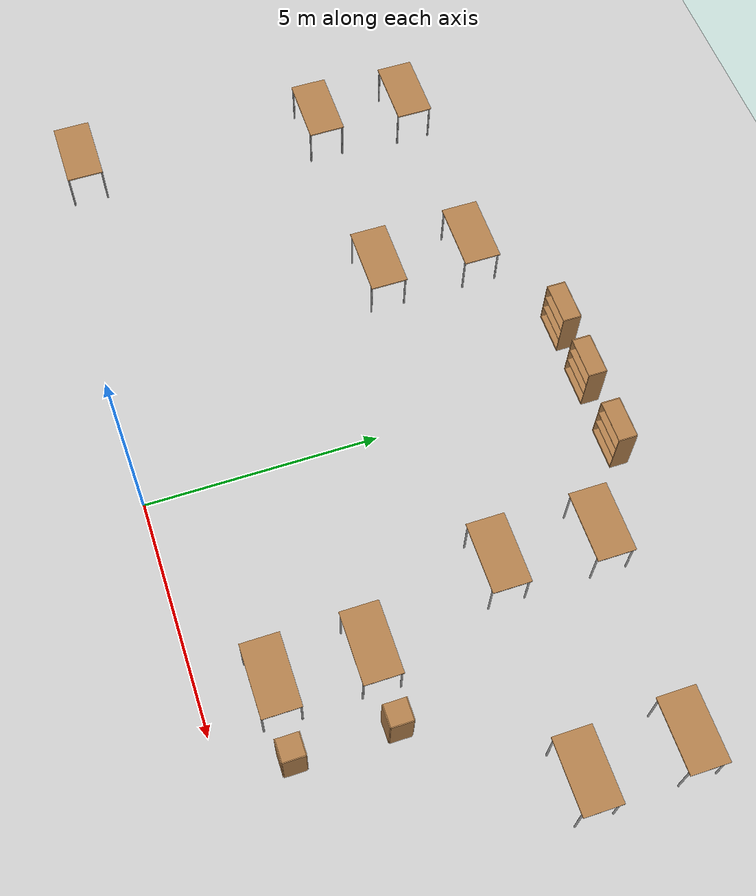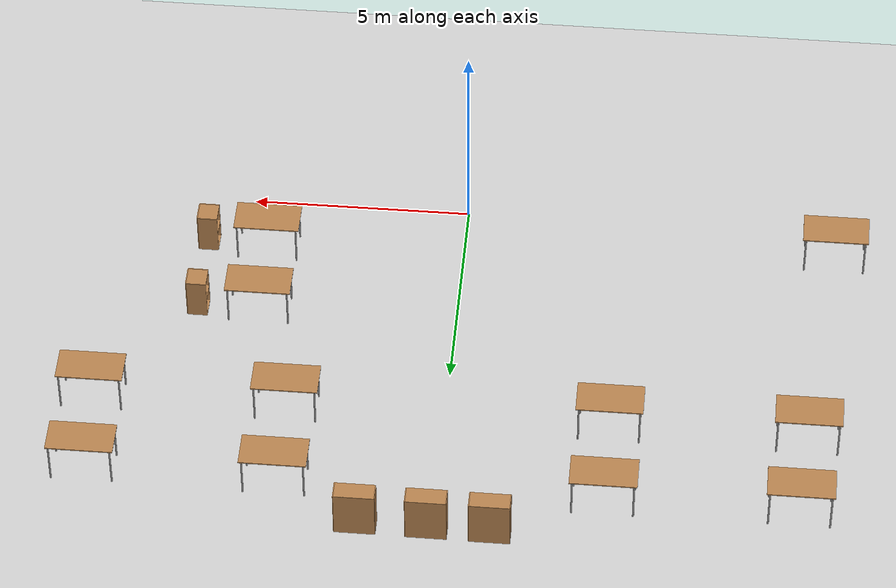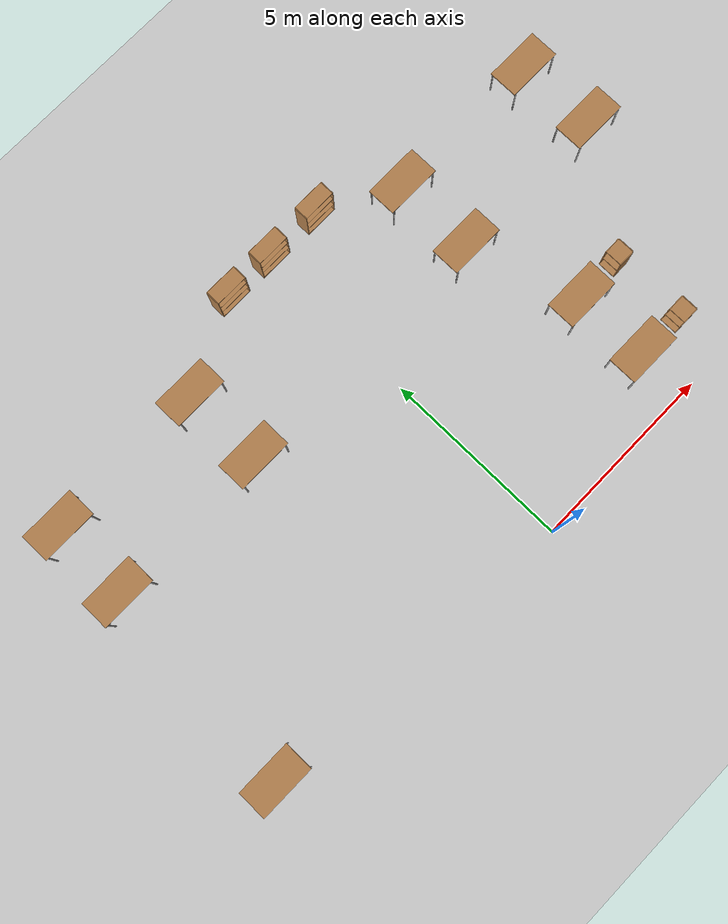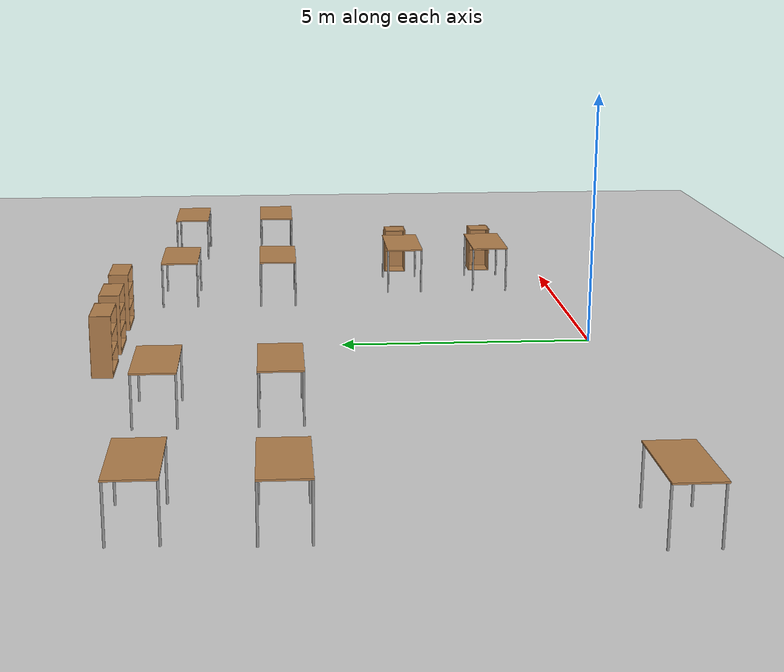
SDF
<sdf version="1.6">
 <world name="default">
  <model name="ground_plane">
   <static>1</static>
   <link name="link">
    <collision name="collision">
     <geometry><plane><normal>0 0 1</normal><size>100 100</size></plane></geometry>
     <surface>
      <contact><collide_bitmask>65535</collide_bitmask></contact>
      <friction><ode><mu>100</mu><mu2>50</mu2></ode></friction>
     </surface>
    </collision>
    <visual name="visual">
     <cast_shadows>0</cast_shadows>
     <geometry><plane><normal>0 0 1</normal><size>100 100</size></plane></geometry>
     <material>
      <script><uri>file://media/materials/scripts/gazebo.material</uri><name>Gazebo/Grey</name></script>
     </material>
    </visual>
   </link>
  </model>
  <model name="table">
   <static>1</static>
   <link name="link">
    <collision name="surface">
     <pose>0 0 1 0 -0 0</pose>
     <geometry><box><size>1.5 0.8 0.03</size></box></geometry>
     <surface><friction><ode><mu>0.6</mu><mu2>0.6</mu2></ode></friction></surface>
    </collision>
    <visual name="visual1">
     <pose>0 0 1 0 -0 0</pose>
     <geometry><box><size>1.5 0.8 0.03</size></box></geometry>
     <material>
      <script><uri>file://media/materials/scripts/gazebo.material</uri><name>Gazebo/Wood</name></script>
     </material>
    </visual>
    <collision name="front_left_leg">
     <pose>0.68 0.38 0.5 0 -0 0</pose>
     <geometry><cylinder><radius>0.02</radius><length>1</length></cylinder></geometry>
    </collision>
    <visual name="front_left_leg">
     <pose>0.68 0.38 0.5 0 -0 0</pose>
     <geometry><cylinder><radius>0.02</radius><length>1</length></cylinder></geometry>
     <material>
      <script><uri>file://media/materials/scripts/gazebo.material</uri><name>Gazebo/Grey</name></script>
     </material>
    </visual>
    <collision name="front_right_leg">
     <pose>0.68 -0.38 0.5 0 -0 0</pose>
     <geometry><cylinder><radius>0.02</radius><length>1</length></cylinder></geometry>
    </collision>
    <visual name="front_right_leg">
     <pose>0.68 -0.38 0.5 0 -0 0</pose>
     <geometry><cylinder><radius>0.02</radius><length>1</length></cylinder></geometry>
     <material>
      <script><uri>file://media/materials/scripts/gazebo.material</uri><name>Gazebo/Grey</name></script>
     </material>
    </visual>
    <collision name="back_right_leg">
     <pose>-0.68 -0.38 0.5 0 -0 0</pose>
     <geometry><cylinder><radius>0.02</radius><length>1</length></cylinder></geometry>
    </collision>
    <visual name="back_right_leg">
     <pose>-0.68 -0.38 0.5 0 -0 0</pose>
     <geometry><cylinder><radius>0.02</radius><length>1</length></cylinder></geometry>
     <material>
      <script><uri>file://media/materials/scripts/gazebo.material</uri><name>Gazebo/Grey</name></script>
     </material>
    </visual>
    <collision name="back_left_leg">
     <pose>-0.68 0.38 0.5 0 -0 0</pose>
     <geometry><cylinder><radius>0.02</radius><length>1</length></cylinder></geometry>
    </collision>
    <visual name="back_left_leg">
     <pose>-0.68 0.38 0.5 0 -0 0</pose>
     <geometry><cylinder><radius>0.02</radius><length>1</length></cylinder></geometry>
     <material>
      <script><uri>file://media/materials/scripts/gazebo.material</uri><name>Gazebo/Grey</name></script>
     </material>
    </visual>
   </link>
   <pose>-8.53709 0.710616 0 0 -0 0</pose>
  </model>
  <model name="table_5">
   <static>1</static>
   <link name="link">
    <collision name="surface">
     <pose>0 0 1 0 -0 0</pose>
     <geometry><box><size>1.5 0.8 0.03</size></box></geometry>
     <surface><friction><ode><mu>0.6</mu><mu2>0.6</mu2></ode></friction></surface>
    </collision>
    <visual name="visual1">
     <pose>0 0 1 0 -0 0</pose>
     <geometry><box><size>1.5 0.8 0.03</size></box></geometry>
     <material>
      <script><uri>file://media/materials/scripts/gazebo.material</uri><name>Gazebo/Wood</name></script>
     </material>
    </visual>
    <collision name="front_left_leg">
     <pose>0.68 0.38 0.5 0 -0 0</pose>
     <geometry><cylinder><radius>0.02</radius><length>1</length></cylinder></geometry>
    </collision>
    <visual name="front_left_leg">
     <pose>0.68 0.38 0.5 0 -0 0</pose>
     <geometry><cylinder><radius>0.02</radius><length>1</length></cylinder></geometry>
     <material>
      <script><uri>file://media/materials/scripts/gazebo.material</uri><name>Gazebo/Grey</name></script>
     </material>
    </visual>
    <collision name="front_right_leg">
     <pose>0.68 -0.38 0.5 0 -0 0</pose>
     <geometry><cylinder><radius>0.02</radius><length>1</length></cylinder></geometry>
    </collision>
    <visual name="front_right_leg">
     <pose>0.68 -0.38 0.5 0 -0 0</pose>
     <geometry><cylinder><radius>0.02</radius><length>1</length></cylinder></geometry>
     <material>
      <script><uri>file://media/materials/scripts/gazebo.material</uri><name>Gazebo/Grey</name></script>
     </material>
    </visual>
    <collision name="back_right_leg">
     <pose>-0.68 -0.38 0.5 0 -0 0</pose>
     <geometry><cylinder><radius>0.02</radius><length>1</length></cylinder></geometry>
    </collision>
    <visual name="back_right_leg">
     <pose>-0.68 -0.38 0.5 0 -0 0</pose>
     <geometry><cylinder><radius>0.02</radius><length>1</length></cylinder></geometry>
     <material>
      <script><uri>file://media/materials/scripts/gazebo.material</uri><name>Gazebo/Grey</name></script>
     </material>
    </visual>
    <collision name="back_left_leg">
     <pose>-0.68 0.38 0.5 0 -0 0</pose>
     <geometry><cylinder><radius>0.02</radius><length>1</length></cylinder></geometry>
    </collision>
    <visual name="back_left_leg">
     <pose>-0.68 0.38 0.5 0 -0 0</pose>
     <geometry><cylinder><radius>0.02</radius><length>1</length></cylinder></geometry>
     <material>
      <script><uri>file://media/materials/scripts/gazebo.material</uri><name>Gazebo/Grey</name></script>
     </material>
    </visual>
   </link>
   <pose>4.50079 3.36839 0 0 -0 0</pose>
  </model>
  <model name="table_6">
   <static>1</static>
   <link name="link">
    <collision name="surface">
     <pose>0 0 1 0 -0 0</pose>
     <geometry><box><size>1.5 0.8 0.03</size></box></geometry>
     <surface><friction><ode><mu>0.6</mu><mu2>0.6</mu2></ode></friction></surface>
    </collision>
    <visual name="visual1">
     <pose>0 0 1 0 -0 0</pose>
     <geometry><box><size>1.5 0.8 0.03</size></box></geometry>
     <material>
      <script><uri>file://media/materials/scripts/gazebo.material</uri><name>Gazebo/Wood</name></script>
     </material>
    </visual>
    <collision name="front_left_leg">
     <pose>0.68 0.38 0.5 0 -0 0</pose>
     <geometry><cylinder><radius>0.02</radius><length>1</length></cylinder></geometry>
    </collision>
    <visual name="front_left_leg">
     <pose>0.68 0.38 0.5 0 -0 0</pose>
     <geometry><cylinder><radius>0.02</radius><length>1</length></cylinder></geometry>
     <material>
      <script><uri>file://media/materials/scripts/gazebo.material</uri><name>Gazebo/Grey</name></script>
     </material>
    </visual>
    <collision name="front_right_leg">
     <pose>0.68 -0.38 0.5 0 -0 0</pose>
     <geometry><cylinder><radius>0.02</radius><length>1</length></cylinder></geometry>
    </collision>
    <visual name="front_right_leg">
     <pose>0.68 -0.38 0.5 0 -0 0</pose>
     <geometry><cylinder><radius>0.02</radius><length>1</length></cylinder></geometry>
     <material>
      <script><uri>file://media/materials/scripts/gazebo.material</uri><name>Gazebo/Grey</name></script>
     </material>
    </visual>
    <collision name="back_right_leg">
     <pose>-0.68 -0.38 0.5 0 -0 0</pose>
     <geometry><cylinder><radius>0.02</radius><length>1</length></cylinder></geometry>
    </collision>
    <visual name="back_right_leg">
     <pose>-0.68 -0.38 0.5 0 -0 0</pose>
     <geometry><cylinder><radius>0.02</radius><length>1</length></cylinder></geometry>
     <material>
      <script><uri>file://media/materials/scripts/gazebo.material</uri><name>Gazebo/Grey</name></script>
     </material>
    </visual>
    <collision name="back_left_leg">
     <pose>-0.68 0.38 0.5 0 -0 0</pose>
     <geometry><cylinder><radius>0.02</radius><length>1</length></cylinder></geometry>
    </collision>
    <visual name="back_left_leg">
     <pose>-0.68 0.38 0.5 0 -0 0</pose>
     <geometry><cylinder><radius>0.02</radius><length>1</length></cylinder></geometry>
     <material>
      <script><uri>file://media/materials/scripts/gazebo.material</uri><name>Gazebo/Grey</name></script>
     </material>
    </visual>
   </link>
   <pose>4.52318 1.40941 0 0 -0 0</pose>
  </model>
  <model name="table_9">
   <static>1</static>
   <link name="link">
    <collision name="surface">
     <pose>0 0 1 0 -0 0</pose>
     <geometry><box><size>1.5 0.8 0.03</size></box></geometry>
     <surface><friction><ode><mu>0.6</mu><mu2>0.6</mu2></ode></friction></surface>
    </collision>
    <visual name="visual1">
     <pose>0 0 1 0 -0 0</pose>
     <geometry><box><size>1.5 0.8 0.03</size></box></geometry>
     <material>
      <script><uri>file://media/materials/scripts/gazebo.material</uri><name>Gazebo/Wood</name></script>
     </material>
    </visual>
    <collision name="front_left_leg">
     <pose>0.68 0.38 0.5 0 -0 0</pose>
     <geometry><cylinder><radius>0.02</radius><length>1</length></cylinder></geometry>
    </collision>
    <visual name="front_left_leg">
     <pose>0.68 0.38 0.5 0 -0 0</pose>
     <geometry><cylinder><radius>0.02</radius><length>1</length></cylinder></geometry>
     <material>
      <script><uri>file://media/materials/scripts/gazebo.material</uri><name>Gazebo/Grey</name></script>
     </material>
    </visual>
    <collision name="front_right_leg">
     <pose>0.68 -0.38 0.5 0 -0 0</pose>
     <geometry><cylinder><radius>0.02</radius><length>1</length></cylinder></geometry>
    </collision>
    <visual name="front_right_leg">
     <pose>0.68 -0.38 0.5 0 -0 0</pose>
     <geometry><cylinder><radius>0.02</radius><length>1</length></cylinder></geometry>
     <material>
      <script><uri>file://media/materials/scripts/gazebo.material</uri><name>Gazebo/Grey</name></script>
     </material>
    </visual>
    <collision name="back_right_leg">
     <pose>-0.68 -0.38 0.5 0 -0 0</pose>
     <geometry><cylinder><radius>0.02</radius><length>1</length></cylinder></geometry>
    </collision>
    <visual name="back_right_leg">
     <pose>-0.68 -0.38 0.5 0 -0 0</pose>
     <geometry><cylinder><radius>0.02</radius><length>1</length></cylinder></geometry>
     <material>
      <script><uri>file://media/materials/scripts/gazebo.material</uri><name>Gazebo/Grey</name></script>
     </material>
    </visual>
    <collision name="back_left_leg">
     <pose>-0.68 0.38 0.5 0 -0 0</pose>
     <geometry><cylinder><radius>0.02</radius><length>1</length></cylinder></geometry>
    </collision>
    <visual name="back_left_leg">
     <pose>-0.68 0.38 0.5 0 -0 0</pose>
     <geometry><cylinder><radius>0.02</radius><length>1</length></cylinder></geometry>
     <material>
      <script><uri>file://media/materials/scripts/gazebo.material</uri><name>Gazebo/Grey</name></script>
     </material>
    </visual>
   </link>
   <pose>-7.98606 8.34113 0 0 -0 0</pose>
  </model>
  <model name="table_10">
   <static>1</static>
   <link name="link">
    <collision name="surface">
     <pose>0 0 1 0 -0 0</pose>
     <geometry><box><size>1.5 0.8 0.03</size></box></geometry>
     <surface><friction><ode><mu>0.6</mu><mu2>0.6</mu2></ode></friction></surface>
    </collision>
    <visual name="visual1">
     <pose>0 0 1 0 -0 0</pose>
     <geometry><box><size>1.5 0.8 0.03</size></box></geometry>
     <material>
      <script><uri>file://media/materials/scripts/gazebo.material</uri><name>Gazebo/Wood</name></script>
     </material>
    </visual>
    <collision name="front_left_leg">
     <pose>0.68 0.38 0.5 0 -0 0</pose>
     <geometry><cylinder><radius>0.02</radius><length>1</length></cylinder></geometry>
    </collision>
    <visual name="front_left_leg">
     <pose>0.68 0.38 0.5 0 -0 0</pose>
     <geometry><cylinder><radius>0.02</radius><length>1</length></cylinder></geometry>
     <material>
      <script><uri>file://media/materials/scripts/gazebo.material</uri><name>Gazebo/Grey</name></script>
     </material>
    </visual>
    <collision name="front_right_leg">
     <pose>0.68 -0.38 0.5 0 -0 0</pose>
     <geometry><cylinder><radius>0.02</radius><length>1</length></cylinder></geometry>
    </collision>
    <visual name="front_right_leg">
     <pose>0.68 -0.38 0.5 0 -0 0</pose>
     <geometry><cylinder><radius>0.02</radius><length>1</length></cylinder></geometry>
     <material>
      <script><uri>file://media/materials/scripts/gazebo.material</uri><name>Gazebo/Grey</name></script>
     </material>
    </visual>
    <collision name="back_right_leg">
     <pose>-0.68 -0.38 0.5 0 -0 0</pose>
     <geometry><cylinder><radius>0.02</radius><length>1</length></cylinder></geometry>
    </collision>
    <visual name="back_right_leg">
     <pose>-0.68 -0.38 0.5 0 -0 0</pose>
     <geometry><cylinder><radius>0.02</radius><length>1</length></cylinder></geometry>
     <material>
      <script><uri>file://media/materials/scripts/gazebo.material</uri><name>Gazebo/Grey</name></script>
     </material>
    </visual>
    <collision name="back_left_leg">
     <pose>-0.68 0.38 0.5 0 -0 0</pose>
     <geometry><cylinder><radius>0.02</radius><length>1</length></cylinder></geometry>
    </collision>
    <visual name="back_left_leg">
     <pose>-0.68 0.38 0.5 0 -0 0</pose>
     <geometry><cylinder><radius>0.02</radius><length>1</length></cylinder></geometry>
     <material>
      <script><uri>file://media/materials/scripts/gazebo.material</uri><name>Gazebo/Grey</name></script>
     </material>
    </visual>
   </link>
   <pose>-3.67482 8.39003 0 0 -0 0</pose>
  </model>
  <model name="table_11">
   <static>1</static>
   <link name="link">
    <collision name="surface">
     <pose>0 0 1 0 -0 0</pose>
     <geometry><box><size>1.5 0.8 0.03</size></box></geometry>
     <surface><friction><ode><mu>0.6</mu><mu2>0.6</mu2></ode></friction></surface>
    </collision>
    <visual name="visual1">
     <pose>0 0 1 0 -0 0</pose>
     <geometry><box><size>1.5 0.8 0.03</size></box></geometry>
     <material>
      <script><uri>file://media/materials/scripts/gazebo.material</uri><name>Gazebo/Wood</name></script>
     </material>
    </visual>
    <collision name="front_left_leg">
     <pose>0.68 0.38 0.5 0 -0 0</pose>
     <geometry><cylinder><radius>0.02</radius><length>1</length></cylinder></geometry>
    </collision>
    <visual name="front_left_leg">
     <pose>0.68 0.38 0.5 0 -0 0</pose>
     <geometry><cylinder><radius>0.02</radius><length>1</length></cylinder></geometry>
     <material>
      <script><uri>file://media/materials/scripts/gazebo.material</uri><name>Gazebo/Grey</name></script>
     </material>
    </visual>
    <collision name="front_right_leg">
     <pose>0.68 -0.38 0.5 0 -0 0</pose>
     <geometry><cylinder><radius>0.02</radius><length>1</length></cylinder></geometry>
    </collision>
    <visual name="front_right_leg">
     <pose>0.68 -0.38 0.5 0 -0 0</pose>
     <geometry><cylinder><radius>0.02</radius><length>1</length></cylinder></geometry>
     <material>
      <script><uri>file://media/materials/scripts/gazebo.material</uri><name>Gazebo/Grey</name></script>
     </material>
    </visual>
    <collision name="back_right_leg">
     <pose>-0.68 -0.38 0.5 0 -0 0</pose>
     <geometry><cylinder><radius>0.02</radius><length>1</length></cylinder></geometry>
    </collision>
    <visual name="back_right_leg">
     <pose>-0.68 -0.38 0.5 0 -0 0</pose>
     <geometry><cylinder><radius>0.02</radius><length>1</length></cylinder></geometry>
     <material>
      <script><uri>file://media/materials/scripts/gazebo.material</uri><name>Gazebo/Grey</name></script>
     </material>
    </visual>
    <collision name="back_left_leg">
     <pose>-0.68 0.38 0.5 0 -0 0</pose>
     <geometry><cylinder><radius>0.02</radius><length>1</length></cylinder></geometry>
    </collision>
    <visual name="back_left_leg">
     <pose>-0.68 0.38 0.5 0 -0 0</pose>
     <geometry><cylinder><radius>0.02</radius><length>1</length></cylinder></geometry>
     <material>
      <script><uri>file://media/materials/scripts/gazebo.material</uri><name>Gazebo/Grey</name></script>
     </material>
    </visual>
   </link>
   <pose>-8.09236 6.25425 0 0 -0 0</pose>
  </model>
  <model name="table_12">
   <static>1</static>
   <link name="link">
    <collision name="surface">
     <pose>0 0 1 0 -0 0</pose>
     <geometry><box><size>1.5 0.8 0.03</size></box></geometry>
     <surface><friction><ode><mu>0.6</mu><mu2>0.6</mu2></ode></friction></surface>
    </collision>
    <visual name="visual1">
     <pose>0 0 1 0 -0 0</pose>
     <geometry><box><size>1.5 0.8 0.03</size></box></geometry>
     <material>
      <script><uri>file://media/materials/scripts/gazebo.material</uri><name>Gazebo/Wood</name></script>
     </material>
    </visual>
    <collision name="front_left_leg">
     <pose>0.68 0.38 0.5 0 -0 0</pose>
     <geometry><cylinder><radius>0.02</radius><length>1</length></cylinder></geometry>
    </collision>
    <visual name="front_left_leg">
     <pose>0.68 0.38 0.5 0 -0 0</pose>
     <geometry><cylinder><radius>0.02</radius><length>1</length></cylinder></geometry>
     <material>
      <script><uri>file://media/materials/scripts/gazebo.material</uri><name>Gazebo/Grey</name></script>
     </material>
    </visual>
    <collision name="front_right_leg">
     <pose>0.68 -0.38 0.5 0 -0 0</pose>
     <geometry><cylinder><radius>0.02</radius><length>1</length></cylinder></geometry>
    </collision>
    <visual name="front_right_leg">
     <pose>0.68 -0.38 0.5 0 -0 0</pose>
     <geometry><cylinder><radius>0.02</radius><length>1</length></cylinder></geometry>
     <material>
      <script><uri>file://media/materials/scripts/gazebo.material</uri><name>Gazebo/Grey</name></script>
     </material>
    </visual>
    <collision name="back_right_leg">
     <pose>-0.68 -0.38 0.5 0 -0 0</pose>
     <geometry><cylinder><radius>0.02</radius><length>1</length></cylinder></geometry>
    </collision>
    <visual name="back_right_leg">
     <pose>-0.68 -0.38 0.5 0 -0 0</pose>
     <geometry><cylinder><radius>0.02</radius><length>1</length></cylinder></geometry>
     <material>
      <script><uri>file://media/materials/scripts/gazebo.material</uri><name>Gazebo/Grey</name></script>
     </material>
    </visual>
    <collision name="back_left_leg">
     <pose>-0.68 0.38 0.5 0 -0 0</pose>
     <geometry><cylinder><radius>0.02</radius><length>1</length></cylinder></geometry>
    </collision>
    <visual name="back_left_leg">
     <pose>-0.68 0.38 0.5 0 -0 0</pose>
     <geometry><cylinder><radius>0.02</radius><length>1</length></cylinder></geometry>
     <material>
      <script><uri>file://media/materials/scripts/gazebo.material</uri><name>Gazebo/Grey</name></script>
     </material>
    </visual>
   </link>
   <pose>-3.68213 6.26365 0 0 -0 0</pose>
  </model>
  <model name="table_13">
   <static>1</static>
   <link name="link">
    <collision name="surface">
     <pose>0 0 1 0 -0 0</pose>
     <geometry><box><size>1.5 0.8 0.03</size></box></geometry>
     <surface><friction><ode><mu>0.6</mu><mu2>0.6</mu2></ode></friction></surface>
    </collision>
    <visual name="visual1">
     <pose>0 0 1 0 -0 0</pose>
     <geometry><box><size>1.5 0.8 0.03</size></box></geometry>
     <material>
      <script><uri>file://media/materials/scripts/gazebo.material</uri><name>Gazebo/Wood</name></script>
     </material>
    </visual>
    <collision name="front_left_leg">
     <pose>0.68 0.38 0.5 0 -0 0</pose>
     <geometry><cylinder><radius>0.02</radius><length>1</length></cylinder></geometry>
    </collision>
    <visual name="front_left_leg">
     <pose>0.68 0.38 0.5 0 -0 0</pose>
     <geometry><cylinder><radius>0.02</radius><length>1</length></cylinder></geometry>
     <material>
      <script><uri>file://media/materials/scripts/gazebo.material</uri><name>Gazebo/Grey</name></script>
     </material>
    </visual>
    <collision name="front_right_leg">
     <pose>0.68 -0.38 0.5 0 -0 0</pose>
     <geometry><cylinder><radius>0.02</radius><length>1</length></cylinder></geometry>
    </collision>
    <visual name="front_right_leg">
     <pose>0.68 -0.38 0.5 0 -0 0</pose>
     <geometry><cylinder><radius>0.02</radius><length>1</length></cylinder></geometry>
     <material>
      <script><uri>file://media/materials/scripts/gazebo.material</uri><name>Gazebo/Grey</name></script>
     </material>
    </visual>
    <collision name="back_right_leg">
     <pose>-0.68 -0.38 0.5 0 -0 0</pose>
     <geometry><cylinder><radius>0.02</radius><length>1</length></cylinder></geometry>
    </collision>
    <visual name="back_right_leg">
     <pose>-0.68 -0.38 0.5 0 -0 0</pose>
     <geometry><cylinder><radius>0.02</radius><length>1</length></cylinder></geometry>
     <material>
      <script><uri>file://media/materials/scripts/gazebo.material</uri><name>Gazebo/Grey</name></script>
     </material>
    </visual>
    <collision name="back_left_leg">
     <pose>-0.68 0.38 0.5 0 -0 0</pose>
     <geometry><cylinder><radius>0.02</radius><length>1</length></cylinder></geometry>
    </collision>
    <visual name="back_left_leg">
     <pose>-0.68 0.38 0.5 0 -0 0</pose>
     <geometry><cylinder><radius>0.02</radius><length>1</length></cylinder></geometry>
     <material>
      <script><uri>file://media/materials/scripts/gazebo.material</uri><name>Gazebo/Grey</name></script>
     </material>
    </visual>
   </link>
   <pose>3.57065 8.41018 0 0 -0 0</pose>
  </model>
  <model name="table_14">
   <static>1</static>
   <link name="link">
    <collision name="surface">
     <pose>0 0 1 0 -0 0</pose>
     <geometry><box><size>1.5 0.8 0.03</size></box></geometry>
     <surface><friction><ode><mu>0.6</mu><mu2>0.6</mu2></ode></friction></surface>
    </collision>
    <visual name="visual1">
     <pose>0 0 1 0 -0 0</pose>
     <geometry><box><size>1.5 0.8 0.03</size></box></geometry>
     <material>
      <script><uri>file://media/materials/scripts/gazebo.material</uri><name>Gazebo/Wood</name></script>
     </material>
    </visual>
    <collision name="front_left_leg">
     <pose>0.68 0.38 0.5 0 -0 0</pose>
     <geometry><cylinder><radius>0.02</radius><length>1</length></cylinder></geometry>
    </collision>
    <visual name="front_left_leg">
     <pose>0.68 0.38 0.5 0 -0 0</pose>
     <geometry><cylinder><radius>0.02</radius><length>1</length></cylinder></geometry>
     <material>
      <script><uri>file://media/materials/scripts/gazebo.material</uri><name>Gazebo/Grey</name></script>
     </material>
    </visual>
    <collision name="front_right_leg">
     <pose>0.68 -0.38 0.5 0 -0 0</pose>
     <geometry><cylinder><radius>0.02</radius><length>1</length></cylinder></geometry>
    </collision>
    <visual name="front_right_leg">
     <pose>0.68 -0.38 0.5 0 -0 0</pose>
     <geometry><cylinder><radius>0.02</radius><length>1</length></cylinder></geometry>
     <material>
      <script><uri>file://media/materials/scripts/gazebo.material</uri><name>Gazebo/Grey</name></script>
     </material>
    </visual>
    <collision name="back_right_leg">
     <pose>-0.68 -0.38 0.5 0 -0 0</pose>
     <geometry><cylinder><radius>0.02</radius><length>1</length></cylinder></geometry>
    </collision>
    <visual name="back_right_leg">
     <pose>-0.68 -0.38 0.5 0 -0 0</pose>
     <geometry><cylinder><radius>0.02</radius><length>1</length></cylinder></geometry>
     <material>
      <script><uri>file://media/materials/scripts/gazebo.material</uri><name>Gazebo/Grey</name></script>
     </material>
    </visual>
    <collision name="back_left_leg">
     <pose>-0.68 0.38 0.5 0 -0 0</pose>
     <geometry><cylinder><radius>0.02</radius><length>1</length></cylinder></geometry>
    </collision>
    <visual name="back_left_leg">
     <pose>-0.68 0.38 0.5 0 -0 0</pose>
     <geometry><cylinder><radius>0.02</radius><length>1</length></cylinder></geometry>
     <material>
      <script><uri>file://media/materials/scripts/gazebo.material</uri><name>Gazebo/Grey</name></script>
     </material>
    </visual>
   </link>
   <pose>3.55684 6.2635 0 0 -0 0</pose>
  </model>
  <model name="table_15">
   <static>1</static>
   <link name="link">
    <collision name="surface">
     <pose>0 0 1 0 -0 0</pose>
     <geometry><box><size>1.5 0.8 0.03</size></box></geometry>
     <surface><friction><ode><mu>0.6</mu><mu2>0.6</mu2></ode></friction></surface>
    </collision>
    <visual name="visual1">
     <pose>0 0 1 0 -0 0</pose>
     <geometry><box><size>1.5 0.8 0.03</size></box></geometry>
     <material>
      <script><uri>file://media/materials/scripts/gazebo.material</uri><name>Gazebo/Wood</name></script>
     </material>
    </visual>
    <collision name="front_left_leg">
     <pose>0.68 0.38 0.5 0 -0 0</pose>
     <geometry><cylinder><radius>0.02</radius><length>1</length></cylinder></geometry>
    </collision>
    <visual name="front_left_leg">
     <pose>0.68 0.38 0.5 0 -0 0</pose>
     <geometry><cylinder><radius>0.02</radius><length>1</length></cylinder></geometry>
     <material>
      <script><uri>file://media/materials/scripts/gazebo.material</uri><name>Gazebo/Grey</name></script>
     </material>
    </visual>
    <collision name="front_right_leg">
     <pose>0.68 -0.38 0.5 0 -0 0</pose>
     <geometry><cylinder><radius>0.02</radius><length>1</length></cylinder></geometry>
    </collision>
    <visual name="front_right_leg">
     <pose>0.68 -0.38 0.5 0 -0 0</pose>
     <geometry><cylinder><radius>0.02</radius><length>1</length></cylinder></geometry>
     <material>
      <script><uri>file://media/materials/scripts/gazebo.material</uri><name>Gazebo/Grey</name></script>
     </material>
    </visual>
    <collision name="back_right_leg">
     <pose>-0.68 -0.38 0.5 0 -0 0</pose>
     <geometry><cylinder><radius>0.02</radius><length>1</length></cylinder></geometry>
    </collision>
    <visual name="back_right_leg">
     <pose>-0.68 -0.38 0.5 0 -0 0</pose>
     <geometry><cylinder><radius>0.02</radius><length>1</length></cylinder></geometry>
     <material>
      <script><uri>file://media/materials/scripts/gazebo.material</uri><name>Gazebo/Grey</name></script>
     </material>
    </visual>
    <collision name="back_left_leg">
     <pose>-0.68 0.38 0.5 0 -0 0</pose>
     <geometry><cylinder><radius>0.02</radius><length>1</length></cylinder></geometry>
    </collision>
    <visual name="back_left_leg">
     <pose>-0.68 0.38 0.5 0 -0 0</pose>
     <geometry><cylinder><radius>0.02</radius><length>1</length></cylinder></geometry>
     <material>
      <script><uri>file://media/materials/scripts/gazebo.material</uri><name>Gazebo/Grey</name></script>
     </material>
    </visual>
   </link>
   <pose>7.84357 8.36254 0 0 -0 0</pose>
  </model>
  <model name="table_16">
   <static>1</static>
   <link name="link">
    <collision name="surface">
     <pose>0 0 1 0 -0 0</pose>
     <geometry><box><size>1.5 0.8 0.03</size></box></geometry>
     <surface><friction><ode><mu>0.6</mu><mu2>0.6</mu2></ode></friction></surface>
    </collision>
    <visual name="visual1">
     <pose>0 0 1 0 -0 0</pose>
     <geometry><box><size>1.5 0.8 0.03</size></box></geometry>
     <material>
      <script><uri>file://media/materials/scripts/gazebo.material</uri><name>Gazebo/Wood</name></script>
     </material>
    </visual>
    <collision name="front_left_leg">
     <pose>0.68 0.38 0.5 0 -0 0</pose>
     <geometry><cylinder><radius>0.02</radius><length>1</length></cylinder></geometry>
    </collision>
    <visual name="front_left_leg">
     <pose>0.68 0.38 0.5 0 -0 0</pose>
     <geometry><cylinder><radius>0.02</radius><length>1</length></cylinder></geometry>
     <material>
      <script><uri>file://media/materials/scripts/gazebo.material</uri><name>Gazebo/Grey</name></script>
     </material>
    </visual>
    <collision name="front_right_leg">
     <pose>0.68 -0.38 0.5 0 -0 0</pose>
     <geometry><cylinder><radius>0.02</radius><length>1</length></cylinder></geometry>
    </collision>
    <visual name="front_right_leg">
     <pose>0.68 -0.38 0.5 0 -0 0</pose>
     <geometry><cylinder><radius>0.02</radius><length>1</length></cylinder></geometry>
     <material>
      <script><uri>file://media/materials/scripts/gazebo.material</uri><name>Gazebo/Grey</name></script>
     </material>
    </visual>
    <collision name="back_right_leg">
     <pose>-0.68 -0.38 0.5 0 -0 0</pose>
     <geometry><cylinder><radius>0.02</radius><length>1</length></cylinder></geometry>
    </collision>
    <visual name="back_right_leg">
     <pose>-0.68 -0.38 0.5 0 -0 0</pose>
     <geometry><cylinder><radius>0.02</radius><length>1</length></cylinder></geometry>
     <material>
      <script><uri>file://media/materials/scripts/gazebo.material</uri><name>Gazebo/Grey</name></script>
     </material>
    </visual>
    <collision name="back_left_leg">
     <pose>-0.68 0.38 0.5 0 -0 0</pose>
     <geometry><cylinder><radius>0.02</radius><length>1</length></cylinder></geometry>
    </collision>
    <visual name="back_left_leg">
     <pose>-0.68 0.38 0.5 0 -0 0</pose>
     <geometry><cylinder><radius>0.02</radius><length>1</length></cylinder></geometry>
     <material>
      <script><uri>file://media/materials/scripts/gazebo.material</uri><name>Gazebo/Grey</name></script>
     </material>
    </visual>
   </link>
   <pose>7.93022 6.27322 0 0 -0 0</pose>
  </model>
  <model name="cabinet_0">
   <static>1</static>
   <link name="cabinet_bottom_plate">
    <inertial>
     <pose>0 0 -1 0 -0 0</pose>
     <inertia><ixx>2.05</ixx><ixy>0</ixy><ixz>0</ixz><iyy>2.05</iyy><iyz>0</iyz><izz>2.05</izz></inertia>
     <mass>25</mass>
    </inertial>
    <collision name="cabinet_bottom_plate_geom">
     <pose>0 0 0.01 0 -0 0</pose>
     <geometry><box><size>0.45 0.45 0.02</size></box></geometry>
    </collision>
    <visual name="cabinet_bottom_plate_geom_visual">
     <pose>0 0 0.01 0 -0 0</pose>
     <geometry><box><size>0.45 0.45 0.02</size></box></geometry>
     <material>
      <script><uri>file://media/materials/scripts/gazebo.material</uri><name>Gazebo/Wood</name></script>
     </material>
    </visual>
    <collision name="cabinet_bottom_plate_geom_cabinet_back_plate">
     <pose>0.235 0 0.51 0 -0 0</pose>
     <geometry><box><size>0.02 0.45 1.02</size></box></geometry>
    </collision>
    <visual name="cabinet_bottom_plate_geom_cabinet_back_plate_visual">
     <pose>0.235 0 0.51 0 -0 0</pose>
     <geometry><box><size>0.02 0.45 1.02</size></box></geometry>
     <material>
      <script><uri>file://media/materials/scripts/gazebo.material</uri><name>Gazebo/Wood</name></script>
     </material>
    </visual>
    <collision name="cabinet_bottom_plate_geom_cabinet_left_plate">
     <pose>0 0.235 0.51 0 -0 0</pose>
     <geometry><box><size>0.45 0.02 1.02</size></box></geometry>
    </collision>
    <visual name="cabinet_bottom_plate_geom_cabinet_left_plate_visual">
     <pose>0 0.235 0.51 0 -0 0</pose>
     <geometry><box><size>0.45 0.02 1.02</size></box></geometry>
     <material>
      <script><uri>file://media/materials/scripts/gazebo.material</uri><name>Gazebo/Wood</name></script>
     </material>
    </visual>
    <collision name="cabinet_bottom_plate_geom_cabinet_middle_plate">
     <pose>0 0 0.51 0 -0 0</pose>
     <geometry><box><size>0.45 0.45 0.02</size></box></geometry>
    </collision>
    <visual name="cabinet_bottom_plate_geom_cabinet_middle_plate_visual">
     <pose>0 0 0.51 0 -0 0</pose>
     <geometry><box><size>0.45 0.45 0.02</size></box></geometry>
     <material>
      <script><uri>file://media/materials/scripts/gazebo.material</uri><name>Gazebo/Wood</name></script>
     </material>
    </visual>
    <collision name="cabinet_bottom_plate_geom_cabinet_right_plate">
     <pose>0 -0.235 0.51 0 -0 0</pose>
     <geometry><box><size>0.45 0.02 1.02</size></box></geometry>
    </collision>
    <visual name="cabinet_bottom_plate_geom_cabinet_right_plate_visual">
     <pose>0 -0.235 0.51 0 -0 0</pose>
     <geometry><box><size>0.45 0.02 1.02</size></box></geometry>
     <material>
      <script><uri>file://media/materials/scripts/gazebo.material</uri><name>Gazebo/Wood</name></script>
     </material>
    </visual>
    <collision name="cabinet_bottom_plate_geom_cabinet_top_plate">
     <pose>0 0 1.01 0 -0 0</pose>
     <geometry><box><size>0.45 0.45 0.02</size></box></geometry>
    </collision>
    <visual name="cabinet_bottom_plate_geom_cabinet_top_plate_visual">
     <pose>0 0 1.01 0 -0 0</pose>
     <geometry><box><size>0.45 0.45 0.02</size></box></geometry>
     <material>
      <script><uri>file://media/materials/scripts/gazebo.material</uri><name>Gazebo/Wood</name></script>
     </material>
    </visual>
   </link>
   <pose>5.90542 3.41772 0 0 -0 0</pose>
  </model>
  <model name="cabinet_1">
   <static>1</static>
   <link name="cabinet_bottom_plate">
    <inertial>
     <pose>0 0 -1 0 -0 0</pose>
     <inertia><ixx>2.05</ixx><ixy>0</ixy><ixz>0</ixz><iyy>2.05</iyy><iyz>0</iyz><izz>2.05</izz></inertia>
     <mass>25</mass>
    </inertial>
    <collision name="cabinet_bottom_plate_geom">
     <pose>0 0 0.01 0 -0 0</pose>
     <geometry><box><size>0.45 0.45 0.02</size></box></geometry>
    </collision>
    <visual name="cabinet_bottom_plate_geom_visual">
     <pose>0 0 0.01 0 -0 0</pose>
     <geometry><box><size>0.45 0.45 0.02</size></box></geometry>
     <material>
      <script><uri>file://media/materials/scripts/gazebo.material</uri><name>Gazebo/Wood</name></script>
     </material>
    </visual>
    <collision name="cabinet_bottom_plate_geom_cabinet_back_plate">
     <pose>0.235 0 0.51 0 -0 0</pose>
     <geometry><box><size>0.02 0.45 1.02</size></box></geometry>
    </collision>
    <visual name="cabinet_bottom_plate_geom_cabinet_back_plate_visual">
     <pose>0.235 0 0.51 0 -0 0</pose>
     <geometry><box><size>0.02 0.45 1.02</size></box></geometry>
     <material>
      <script><uri>file://media/materials/scripts/gazebo.material</uri><name>Gazebo/Wood</name></script>
     </material>
    </visual>
    <collision name="cabinet_bottom_plate_geom_cabinet_left_plate">
     <pose>0 0.235 0.51 0 -0 0</pose>
     <geometry><box><size>0.45 0.02 1.02</size></box></geometry>
    </collision>
    <visual name="cabinet_bottom_plate_geom_cabinet_left_plate_visual">
     <pose>0 0.235 0.51 0 -0 0</pose>
     <geometry><box><size>0.45 0.02 1.02</size></box></geometry>
     <material>
      <script><uri>file://media/materials/scripts/gazebo.material</uri><name>Gazebo/Wood</name></script>
     </material>
    </visual>
    <collision name="cabinet_bottom_plate_geom_cabinet_middle_plate">
     <pose>0 0 0.51 0 -0 0</pose>
     <geometry><box><size>0.45 0.45 0.02</size></box></geometry>
    </collision>
    <visual name="cabinet_bottom_plate_geom_cabinet_middle_plate_visual">
     <pose>0 0 0.51 0 -0 0</pose>
     <geometry><box><size>0.45 0.45 0.02</size></box></geometry>
     <material>
      <script><uri>file://media/materials/scripts/gazebo.material</uri><name>Gazebo/Wood</name></script>
     </material>
    </visual>
    <collision name="cabinet_bottom_plate_geom_cabinet_right_plate">
     <pose>0 -0.235 0.51 0 -0 0</pose>
     <geometry><box><size>0.45 0.02 1.02</size></box></geometry>
    </collision>
    <visual name="cabinet_bottom_plate_geom_cabinet_right_plate_visual">
     <pose>0 -0.235 0.51 0 -0 0</pose>
     <geometry><box><size>0.45 0.02 1.02</size></box></geometry>
     <material>
      <script><uri>file://media/materials/scripts/gazebo.material</uri><name>Gazebo/Wood</name></script>
     </material>
    </visual>
    <collision name="cabinet_bottom_plate_geom_cabinet_top_plate">
     <pose>0 0 1.01 0 -0 0</pose>
     <geometry><box><size>0.45 0.45 0.02</size></box></geometry>
    </collision>
    <visual name="cabinet_bottom_plate_geom_cabinet_top_plate_visual">
     <pose>0 0 1.01 0 -0 0</pose>
     <geometry><box><size>0.45 0.45 0.02</size></box></geometry>
     <material>
      <script><uri>file://media/materials/scripts/gazebo.material</uri><name>Gazebo/Wood</name></script>
     </material>
    </visual>
   </link>
   <pose>5.90507 1.37199 0 0 -0 0</pose>
  </model>
  <model name="bookshelf">
   <static>1</static>
   <link name="link">
    <inertial><mass>1</mass></inertial>
    <collision name="back">
     <pose>0 0.005 0.6 0 -0 0</pose>
     <geometry><box><size>0.9 0.01 1.2</size></box></geometry>
    </collision>
    <visual name="visual1">
     <pose>0 0.005 0.6 0 -0 0</pose>
     <geometry><box><size>0.9 0.01 1.2</size></box></geometry>
     <material>
      <script><uri>file://media/materials/scripts/gazebo.material</uri><name>Gazebo/Wood</name></script>
     </material>
    </visual>
    <collision name="left_side">
     <pose>0.45 -0.195 0.6 0 -0 0</pose>
     <geometry><box><size>0.02 0.4 1.2</size></box></geometry>
    </collision>
    <visual name="visual2">
     <pose>0.45 -0.195 0.6 0 -0 0</pose>
     <geometry><box><size>0.02 0.4 1.2</size></box></geometry>
     <material>
      <script><uri>file://media/materials/scripts/gazebo.material</uri><name>Gazebo/Wood</name></script>
     </material>
    </visual>
    <collision name="right_side">
     <pose>-0.45 -0.195 0.6 0 -0 0</pose>
     <geometry><box><size>0.02 0.4 1.2</size></box></geometry>
    </collision>
    <visual name="visual3">
     <pose>-0.45 -0.195 0.6 0 -0 0</pose>
     <geometry><box><size>0.02 0.4 1.2</size></box></geometry>
     <material>
      <script><uri>file://media/materials/scripts/gazebo.material</uri><name>Gazebo/Wood</name></script>
     </material>
    </visual>
    <collision name="bottom">
     <pose>0 -0.195 0.03 0 -0 0</pose>
     <geometry><box><size>0.88 0.4 0.06</size></box></geometry>
    </collision>
    <visual name="visual4">
     <pose>0 -0.195 0.03 0 -0 0</pose>
     <geometry><box><size>0.88 0.4 0.06</size></box></geometry>
     <material>
      <script><uri>file://media/materials/scripts/gazebo.material</uri><name>Gazebo/Wood</name></script>
     </material>
    </visual>
    <collision name="top">
     <pose>0 -0.195 1.19 0 -0 0</pose>
     <geometry><box><size>0.88 0.4 0.02</size></box></geometry>
    </collision>
    <visual name="visual5">
     <pose>0 -0.195 1.19 0 -0 0</pose>
     <geometry><box><size>0.88 0.4 0.02</size></box></geometry>
     <material>
      <script><uri>file://media/materials/scripts/gazebo.material</uri><name>Gazebo/Wood</name></script>
     </material>
    </visual>
    <collision name="low_shelf">
     <pose>0 -0.195 0.43 0 -0 0</pose>
     <geometry><box><size>0.88 0.4 0.02</size></box></geometry>
    </collision>
    <visual name="visual6">
     <pose>0 -0.195 0.43 0 -0 0</pose>
     <geometry><box><size>0.88 0.4 0.02</size></box></geometry>
     <material>
      <script><uri>file://media/materials/scripts/gazebo.material</uri><name>Gazebo/Wood</name></script>
     </material>
    </visual>
    <collision name="high_shelf">
     <pose>0 -0.195 0.8 0 -0 0</pose>
     <geometry><box><size>0.88 0.4 0.02</size></box></geometry>
    </collision>
    <visual name="visual7">
     <pose>0 -0.195 0.8 0 -0 0</pose>
     <geometry><box><size>0.88 0.4 0.02</size></box></geometry>
     <material>
      <script><uri>file://media/materials/scripts/gazebo.material</uri><name>Gazebo/Wood</name></script>
     </material>
    </visual>
   </link>
   <pose>-1.27049 9.76884 0 0 -0 0</pose>
  </model>
  <model name="bookshelf_0">
   <static>1</static>
   <link name="link">
    <inertial><mass>1</mass></inertial>
    <collision name="back">
     <pose>0 0.005 0.6 0 -0 0</pose>
     <geometry><box><size>0.9 0.01 1.2</size></box></geometry>
    </collision>
    <visual name="visual1">
     <pose>0 0.005 0.6 0 -0 0</pose>
     <geometry><box><size>0.9 0.01 1.2</size></box></geometry>
     <material>
      <script><uri>file://media/materials/scripts/gazebo.material</uri><name>Gazebo/Wood</name></script>
     </material>
    </visual>
    <collision name="left_side">
     <pose>0.45 -0.195 0.6 0 -0 0</pose>
     <geometry><box><size>0.02 0.4 1.2</size></box></geometry>
    </collision>
    <visual name="visual2">
     <pose>0.45 -0.195 0.6 0 -0 0</pose>
     <geometry><box><size>0.02 0.4 1.2</size></box></geometry>
     <material>
      <script><uri>file://media/materials/scripts/gazebo.material</uri><name>Gazebo/Wood</name></script>
     </material>
    </visual>
    <collision name="right_side">
     <pose>-0.45 -0.195 0.6 0 -0 0</pose>
     <geometry><box><size>0.02 0.4 1.2</size></box></geometry>
    </collision>
    <visual name="visual3">
     <pose>-0.45 -0.195 0.6 0 -0 0</pose>
     <geometry><box><size>0.02 0.4 1.2</size></box></geometry>
     <material>
      <script><uri>file://media/materials/scripts/gazebo.material</uri><name>Gazebo/Wood</name></script>
     </material>
    </visual>
    <collision name="bottom">
     <pose>0 -0.195 0.03 0 -0 0</pose>
     <geometry><box><size>0.88 0.4 0.06</size></box></geometry>
    </collision>
    <visual name="visual4">
     <pose>0 -0.195 0.03 0 -0 0</pose>
     <geometry><box><size>0.88 0.4 0.06</size></box></geometry>
     <material>
      <script><uri>file://media/materials/scripts/gazebo.material</uri><name>Gazebo/Wood</name></script>
     </material>
    </visual>
    <collision name="top">
     <pose>0 -0.195 1.19 0 -0 0</pose>
     <geometry><box><size>0.88 0.4 0.02</size></box></geometry>
    </collision>
    <visual name="visual5">
     <pose>0 -0.195 1.19 0 -0 0</pose>
     <geometry><box><size>0.88 0.4 0.02</size></box></geometry>
     <material>
      <script><uri>file://media/materials/scripts/gazebo.material</uri><name>Gazebo/Wood</name></script>
     </material>
    </visual>
    <collision name="low_shelf">
     <pose>0 -0.195 0.43 0 -0 0</pose>
     <geometry><box><size>0.88 0.4 0.02</size></box></geometry>
    </collision>
    <visual name="visual6">
     <pose>0 -0.195 0.43 0 -0 0</pose>
     <geometry><box><size>0.88 0.4 0.02</size></box></geometry>
     <material>
      <script><uri>file://media/materials/scripts/gazebo.material</uri><name>Gazebo/Wood</name></script>
     </material>
    </visual>
    <collision name="high_shelf">
     <pose>0 -0.195 0.8 0 -0 0</pose>
     <geometry><box><size>0.88 0.4 0.02</size></box></geometry>
    </collision>
    <visual name="visual7">
     <pose>0 -0.195 0.8 0 -0 0</pose>
     <geometry><box><size>0.88 0.4 0.02</size></box></geometry>
     <material>
      <script><uri>file://media/materials/scripts/gazebo.material</uri><name>Gazebo/Wood</name></script>
     </material>
    </visual>
   </link>
   <pose>0.119163 9.75973 0 0 -0 0</pose>
  </model>
  <model name="bookshelf_1">
   <static>1</static>
   <link name="link">
    <inertial><mass>1</mass></inertial>
    <collision name="back">
     <pose>0 0.005 0.6 0 -0 0</pose>
     <geometry><box><size>0.9 0.01 1.2</size></box></geometry>
    </collision>
    <visual name="visual1">
     <pose>0 0.005 0.6 0 -0 0</pose>
     <geometry><box><size>0.9 0.01 1.2</size></box></geometry>
     <material>
      <script><uri>file://media/materials/scripts/gazebo.material</uri><name>Gazebo/Wood</name></script>
     </material>
    </visual>
    <collision name="left_side">
     <pose>0.45 -0.195 0.6 0 -0 0</pose>
     <geometry><box><size>0.02 0.4 1.2</size></box></geometry>
    </collision>
    <visual name="visual2">
     <pose>0.45 -0.195 0.6 0 -0 0</pose>
     <geometry><box><size>0.02 0.4 1.2</size></box></geometry>
     <material>
      <script><uri>file://media/materials/scripts/gazebo.material</uri><name>Gazebo/Wood</name></script>
     </material>
    </visual>
    <collision name="right_side">
     <pose>-0.45 -0.195 0.6 0 -0 0</pose>
     <geometry><box><size>0.02 0.4 1.2</size></box></geometry>
    </collision>
    <visual name="visual3">
     <pose>-0.45 -0.195 0.6 0 -0 0</pose>
     <geometry><box><size>0.02 0.4 1.2</size></box></geometry>
     <material>
      <script><uri>file://media/materials/scripts/gazebo.material</uri><name>Gazebo/Wood</name></script>
     </material>
    </visual>
    <collision name="bottom">
     <pose>0 -0.195 0.03 0 -0 0</pose>
     <geometry><box><size>0.88 0.4 0.06</size></box></geometry>
    </collision>
    <visual name="visual4">
     <pose>0 -0.195 0.03 0 -0 0</pose>
     <geometry><box><size>0.88 0.4 0.06</size></box></geometry>
     <material>
      <script><uri>file://media/materials/scripts/gazebo.material</uri><name>Gazebo/Wood</name></script>
     </material>
    </visual>
    <collision name="top">
     <pose>0 -0.195 1.19 0 -0 0</pose>
     <geometry><box><size>0.88 0.4 0.02</size></box></geometry>
    </collision>
    <visual name="visual5">
     <pose>0 -0.195 1.19 0 -0 0</pose>
     <geometry><box><size>0.88 0.4 0.02</size></box></geometry>
     <material>
      <script><uri>file://media/materials/scripts/gazebo.material</uri><name>Gazebo/Wood</name></script>
     </material>
    </visual>
    <collision name="low_shelf">
     <pose>0 -0.195 0.43 0 -0 0</pose>
     <geometry><box><size>0.88 0.4 0.02</size></box></geometry>
    </collision>
    <visual name="visual6">
     <pose>0 -0.195 0.43 0 -0 0</pose>
     <geometry><box><size>0.88 0.4 0.02</size></box></geometry>
     <material>
      <script><uri>file://media/materials/scripts/gazebo.material</uri><name>Gazebo/Wood</name></script>
     </material>
    </visual>
    <collision name="high_shelf">
     <pose>0 -0.195 0.8 0 -0 0</pose>
     <geometry><box><size>0.88 0.4 0.02</size></box></geometry>
    </collision>
    <visual name="visual7">
     <pose>0 -0.195 0.8 0 -0 0</pose>
     <geometry><box><size>0.88 0.4 0.02</size></box></geometry>
     <material>
      <script><uri>file://media/materials/scripts/gazebo.material</uri><name>Gazebo/Wood</name></script>
     </material>
    </visual>
   </link>
   <pose>1.68212 9.74934 0 0 -0 0</pose>
  </model>
 </world>
</sdf>
